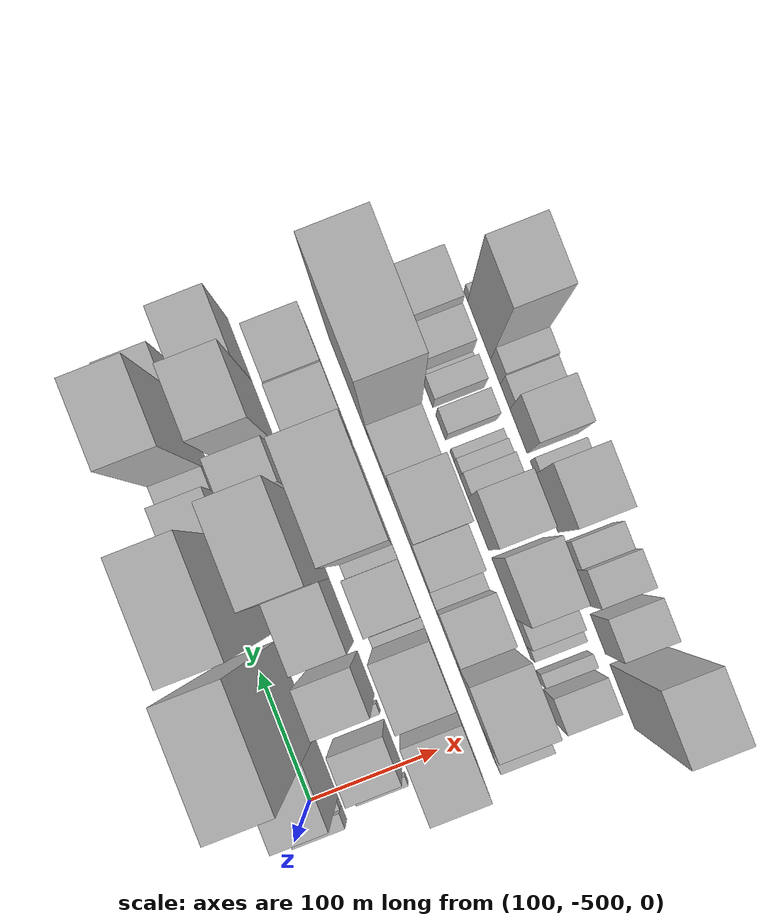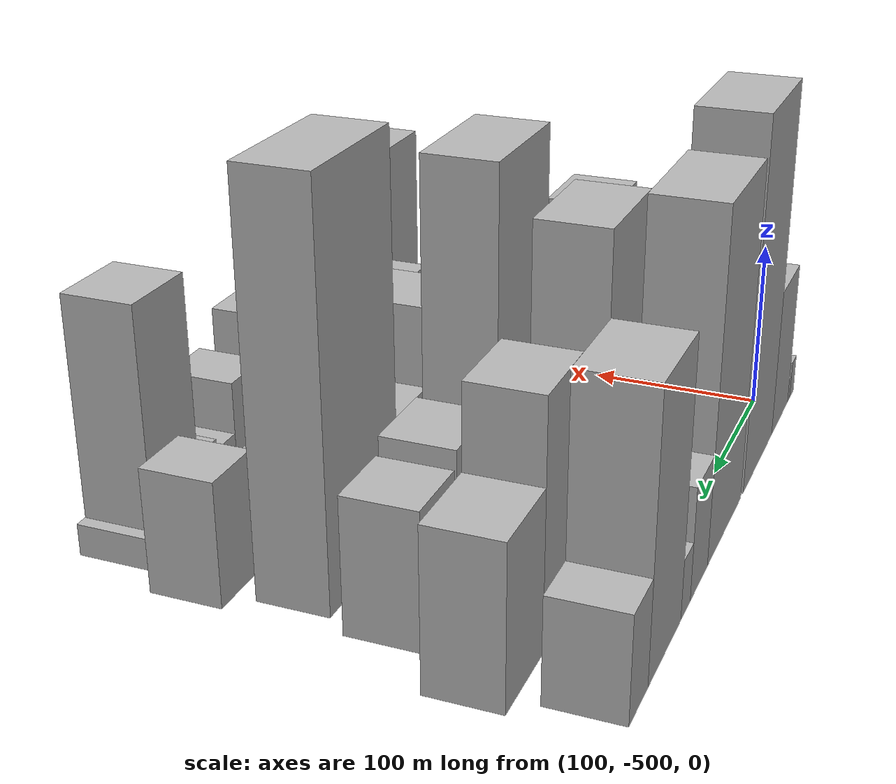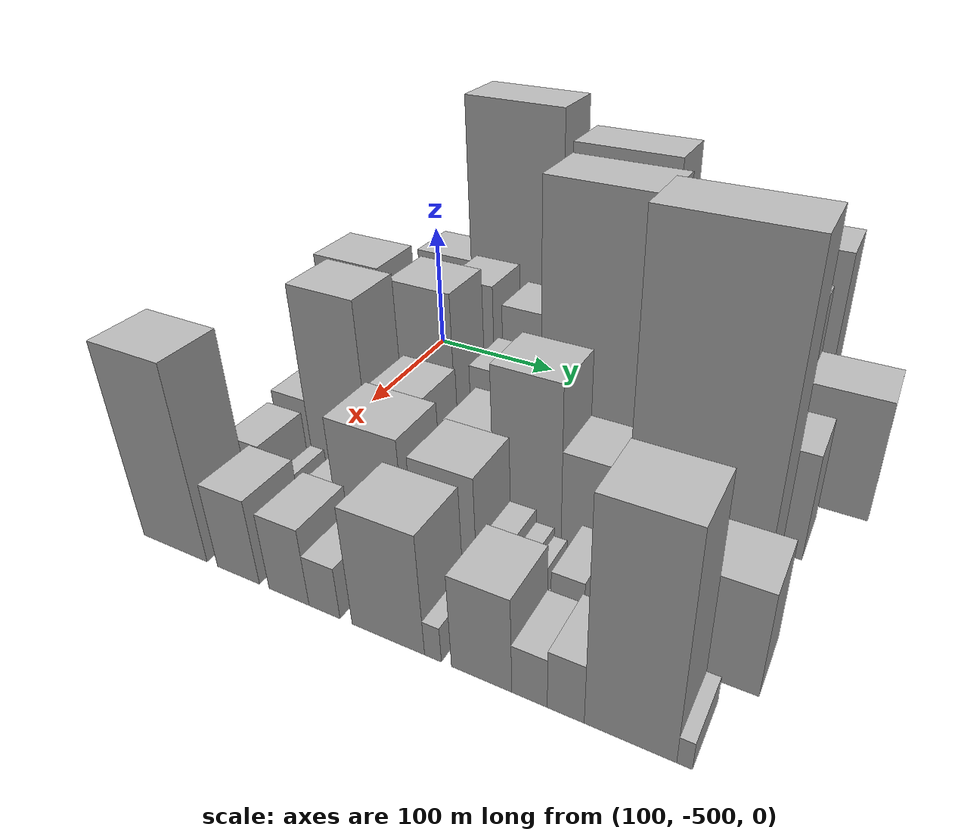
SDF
<sdf version="1.6">
 <world name="default">
  <model name="building_13">
   <static>1</static>
   <pose>100.0000 -517.1850 0 0.000000 0.000000 0.000000</pose>
   <link name="link">
    <pose>0 0 12.00 0 0 0</pose>
    <collision name="collision"><geometry><box><size>40.0000 11.8070 24.0000</size></box></geometry></collision>
    <visual name="visual">
     <cast_shadows>0</cast_shadows>
     <geometry><box><size>40.0000 11.8070 24.0000</size></box></geometry>
     <material>
      <script>
       <uri>model://HANNAS_wall/materials/scripts</uri>
       <uri>model://HANNAS_wall/materials/textures</uri>
       <name>vrc/HANNAS_wall</name>
      </script>
     </material>
    </visual>
   </link>
  </model>
  <model name="building_14">
   <static>1</static>
   <pose>100.0000 -508.1514 0 0.000000 0.000000 0.000000</pose>
   <link name="link">
    <pose>0 0 7.50 0 0 0</pose>
    <collision name="collision"><geometry><box><size>40.0000 6.2602 15.0000</size></box></geometry></collision>
    <visual name="visual">
     <cast_shadows>0</cast_shadows>
     <geometry><box><size>40.0000 6.2602 15.0000</size></box></geometry>
     <material>
      <script>
       <uri>model://HANNAS_wall/materials/scripts</uri>
       <uri>model://HANNAS_wall/materials/textures</uri>
       <name>vrc/HANNAS_wall</name>
      </script>
     </material>
    </visual>
   </link>
  </model>
  <model name="building_15">
   <static>1</static>
   <pose>100.0000 -481.4193 0 0.000000 0.000000 0.000000</pose>
   <link name="link">
    <pose>0 0 45.00 0 0 0</pose>
    <collision name="collision"><geometry><box><size>40.0000 47.2039 90.0000</size></box></geometry></collision>
    <visual name="visual">
     <cast_shadows>0</cast_shadows>
     <geometry><box><size>40.0000 47.2039 90.0000</size></box></geometry>
     <material>
      <script>
       <uri>model://HANNAS_wall/materials/scripts</uri>
       <uri>model://HANNAS_wall/materials/textures</uri>
       <name>vrc/HANNAS_wall</name>
      </script>
     </material>
    </visual>
   </link>
  </model>
  <model name="building_16">
   <static>1</static>
   <pose>100.0000 -420.2112 0 0.000000 0.000000 0.000000</pose>
   <link name="link">
    <pose>0 0 106.50 0 0 0</pose>
    <collision name="collision"><geometry><box><size>40.0000 75.2124 213.0000</size></box></geometry></collision>
    <visual name="visual">
     <cast_shadows>0</cast_shadows>
     <geometry><box><size>40.0000 75.2124 213.0000</size></box></geometry>
     <material>
      <script>
       <uri>model://HANNAS_wall/materials/scripts</uri>
       <uri>model://HANNAS_wall/materials/textures</uri>
       <name>vrc/HANNAS_wall</name>
      </script>
     </material>
    </visual>
   </link>
  </model>
  <model name="building_17">
   <static>1</static>
   <pose>100.0000 -339.1121 0 0.000000 0.000000 0.000000</pose>
   <link name="link">
    <pose>0 0 96.00 0 0 0</pose>
    <collision name="collision"><geometry><box><size>40.0000 74.9859 192.0000</size></box></geometry></collision>
    <visual name="visual">
     <cast_shadows>0</cast_shadows>
     <geometry><box><size>40.0000 74.9859 192.0000</size></box></geometry>
     <material>
      <script>
       <uri>model://HANNAS_wall/materials/scripts</uri>
       <uri>model://HANNAS_wall/materials/textures</uri>
       <name>vrc/HANNAS_wall</name>
      </script>
     </material>
    </visual>
   </link>
  </model>
  <model name="building_18">
   <static>1</static>
   <pose>100.0000 -284.2933 0 0.000000 0.000000 0.000000</pose>
   <link name="link">
    <pose>0 0 31.50 0 0 0</pose>
    <collision name="collision"><geometry><box><size>40.0000 34.6517 63.0000</size></box></geometry></collision>
    <visual name="visual">
     <cast_shadows>0</cast_shadows>
     <geometry><box><size>40.0000 34.6517 63.0000</size></box></geometry>
     <material>
      <script>
       <uri>model://HANNAS_wall/materials/scripts</uri>
       <uri>model://HANNAS_wall/materials/textures</uri>
       <name>vrc/HANNAS_wall</name>
      </script>
     </material>
    </visual>
   </link>
  </model>
  <model name="building_19">
   <static>1</static>
   <pose>100.0000 -258.0641 0 0.000000 0.000000 0.000000</pose>
   <link name="link">
    <pose>0 0 16.50 0 0 0</pose>
    <collision name="collision"><geometry><box><size>40.0000 17.8066 33.0000</size></box></geometry></collision>
    <visual name="visual">
     <cast_shadows>0</cast_shadows>
     <geometry><box><size>40.0000 17.8066 33.0000</size></box></geometry>
     <material>
      <script>
       <uri>model://HANNAS_wall/materials/scripts</uri>
       <uri>model://HANNAS_wall/materials/textures</uri>
       <name>vrc/HANNAS_wall</name>
      </script>
     </material>
    </visual>
   </link>
  </model>
  <model name="building_20">
   <static>1</static>
   <pose>100.0000 -220.5488 0 0.000000 0.000000 0.000000</pose>
   <link name="link">
    <pose>0 0 75.00 0 0 0</pose>
    <collision name="collision"><geometry><box><size>40.0000 57.2241 150.0000</size></box></geometry></collision>
    <visual name="visual">
     <cast_shadows>0</cast_shadows>
     <geometry><box><size>40.0000 57.2241 150.0000</size></box></geometry>
     <material>
      <script>
       <uri>model://HANNAS_wall/materials/scripts</uri>
       <uri>model://HANNAS_wall/materials/textures</uri>
       <name>vrc/HANNAS_wall</name>
      </script>
     </material>
    </visual>
   </link>
  </model>
  <model name="building_21">
   <static>1</static>
   <pose>100.0000 -176.9536 0 0.000000 0.000000 0.000000</pose>
   <link name="link">
    <pose>0 0 28.50 0 0 0</pose>
    <collision name="collision"><geometry><box><size>40.0000 29.9664 57.0000</size></box></geometry></collision>
    <visual name="visual">
     <cast_shadows>0</cast_shadows>
     <geometry><box><size>40.0000 29.9664 57.0000</size></box></geometry>
     <material>
      <script>
       <uri>model://HANNAS_wall/materials/scripts</uri>
       <uri>model://HANNAS_wall/materials/textures</uri>
       <name>vrc/HANNAS_wall</name>
      </script>
     </material>
    </visual>
   </link>
  </model>
  <model name="building_63">
   <static>1</static>
   <pose>152.0000 -509.5908 0 0.000000 0.000000 0.000000</pose>
   <link name="link">
    <pose>0 0 7.50 0 0 0</pose>
    <collision name="collision"><geometry><box><size>40.0000 7.1959 15.0000</size></box></geometry></collision>
    <visual name="visual">
     <cast_shadows>0</cast_shadows>
     <geometry><box><size>40.0000 7.1959 15.0000</size></box></geometry>
     <material>
      <script>
       <uri>model://HANNAS_wall/materials/scripts</uri>
       <uri>model://HANNAS_wall/materials/textures</uri>
       <name>vrc/HANNAS_wall</name>
      </script>
     </material>
    </visual>
   </link>
  </model>
  <model name="building_64">
   <static>1</static>
   <pose>152.0000 -482.2499 0 0.000000 0.000000 0.000000</pose>
   <link name="link">
    <pose>0 0 33.00 0 0 0</pose>
    <collision name="collision"><geometry><box><size>40.0000 35.4860 66.0000</size></box></geometry></collision>
    <visual name="visual">
     <cast_shadows>0</cast_shadows>
     <geometry><box><size>40.0000 35.4860 66.0000</size></box></geometry>
     <material>
      <script>
       <uri>model://HANNAS_wall/materials/scripts</uri>
       <uri>model://HANNAS_wall/materials/textures</uri>
       <name>vrc/HANNAS_wall</name>
      </script>
     </material>
    </visual>
   </link>
  </model>
  <model name="building_65">
   <static>1</static>
   <pose>152.0000 -453.4566 0 0.000000 0.000000 0.000000</pose>
   <link name="link">
    <pose>0 0 9.00 0 0 0</pose>
    <collision name="collision"><geometry><box><size>40.0000 8.1005 18.0000</size></box></geometry></collision>
    <visual name="visual">
     <cast_shadows>0</cast_shadows>
     <geometry><box><size>40.0000 8.1005 18.0000</size></box></geometry>
     <material>
      <script>
       <uri>model://HANNAS_wall/materials/scripts</uri>
       <uri>model://HANNAS_wall/materials/textures</uri>
       <name>vrc/HANNAS_wall</name>
      </script>
     </material>
    </visual>
   </link>
  </model>
  <model name="building_66">
   <static>1</static>
   <pose>152.0000 -428.1462 0 0.000000 0.000000 0.000000</pose>
   <link name="link">
    <pose>0 0 51.00 0 0 0</pose>
    <collision name="collision"><geometry><box><size>40.0000 34.5204 102.0000</size></box></geometry></collision>
    <visual name="visual">
     <cast_shadows>0</cast_shadows>
     <geometry><box><size>40.0000 34.5204 102.0000</size></box></geometry>
     <material>
      <script>
       <uri>model://HANNAS_wall/materials/scripts</uri>
       <uri>model://HANNAS_wall/materials/textures</uri>
       <name>vrc/HANNAS_wall</name>
      </script>
     </material>
    </visual>
   </link>
  </model>
  <model name="building_67">
   <static>1</static>
   <pose>152.0000 -379.0692 0 0.000000 0.000000 0.000000</pose>
   <link name="link">
    <pose>0 0 45.00 0 0 0</pose>
    <collision name="collision"><geometry><box><size>40.0000 49.6336 90.0000</size></box></geometry></collision>
    <visual name="visual">
     <cast_shadows>0</cast_shadows>
     <geometry><box><size>40.0000 49.6336 90.0000</size></box></geometry>
     <material>
      <script>
       <uri>model://HANNAS_wall/materials/scripts</uri>
       <uri>model://HANNAS_wall/materials/textures</uri>
       <name>vrc/HANNAS_wall</name>
      </script>
     </material>
    </visual>
   </link>
  </model>
  <model name="building_68">
   <static>1</static>
   <pose>152.0000 -321.9596 0 0.000000 0.000000 0.000000</pose>
   <link name="link">
    <pose>0 0 88.50 0 0 0</pose>
    <collision name="collision"><geometry><box><size>40.0000 64.5855 177.0000</size></box></geometry></collision>
    <visual name="visual">
     <cast_shadows>0</cast_shadows>
     <geometry><box><size>40.0000 64.5855 177.0000</size></box></geometry>
     <material>
      <script>
       <uri>model://HANNAS_wall/materials/scripts</uri>
       <uri>model://HANNAS_wall/materials/textures</uri>
       <name>vrc/HANNAS_wall</name>
      </script>
     </material>
    </visual>
   </link>
  </model>
  <model name="building_69">
   <static>1</static>
   <pose>152.0000 -271.2479 0 0.000000 0.000000 0.000000</pose>
   <link name="link">
    <pose>0 0 49.50 0 0 0</pose>
    <collision name="collision"><geometry><box><size>40.0000 30.8381 99.0000</size></box></geometry></collision>
    <visual name="visual">
     <cast_shadows>0</cast_shadows>
     <geometry><box><size>40.0000 30.8381 99.0000</size></box></geometry>
     <material>
      <script>
       <uri>model://HANNAS_wall/materials/scripts</uri>
       <uri>model://HANNAS_wall/materials/textures</uri>
       <name>vrc/HANNAS_wall</name>
      </script>
     </material>
    </visual>
   </link>
  </model>
  <model name="building_70">
   <static>1</static>
   <pose>152.0000 -224.0461 0 0.000000 0.000000 0.000000</pose>
   <link name="link">
    <pose>0 0 66.00 0 0 0</pose>
    <collision name="collision"><geometry><box><size>40.0000 49.5654 132.0000</size></box></geometry></collision>
    <visual name="visual">
     <cast_shadows>0</cast_shadows>
     <geometry><box><size>40.0000 49.5654 132.0000</size></box></geometry>
     <material>
      <script>
       <uri>model://HANNAS_wall/materials/scripts</uri>
       <uri>model://HANNAS_wall/materials/textures</uri>
       <name>vrc/HANNAS_wall</name>
      </script>
     </material>
    </visual>
   </link>
  </model>
  <model name="building_71">
   <static>1</static>
   <pose>152.0000 -174.6431 0 0.000000 0.000000 0.000000</pose>
   <link name="link">
    <pose>0 0 43.50 0 0 0</pose>
    <collision name="collision"><geometry><box><size>40.0000 49.2407 87.0000</size></box></geometry></collision>
    <visual name="visual">
     <cast_shadows>0</cast_shadows>
     <geometry><box><size>40.0000 49.2407 87.0000</size></box></geometry>
     <material>
      <script>
       <uri>model://HANNAS_wall/materials/scripts</uri>
       <uri>model://HANNAS_wall/materials/textures</uri>
       <name>vrc/HANNAS_wall</name>
      </script>
     </material>
    </visual>
   </link>
  </model>
  <model name="building_113">
   <static>1</static>
   <pose>204.0000 -490.4051 0 0.000000 0.000000 0.000000</pose>
   <link name="link">
    <pose>0 0 63.00 0 0 0</pose>
    <collision name="collision"><geometry><box><size>40.0000 50.2947 126.0000</size></box></geometry></collision>
    <visual name="visual">
     <cast_shadows>0</cast_shadows>
     <geometry><box><size>40.0000 50.2947 126.0000</size></box></geometry>
     <material>
      <script>
       <uri>model://HANNAS_wall/materials/scripts</uri>
       <uri>model://HANNAS_wall/materials/textures</uri>
       <name>vrc/HANNAS_wall</name>
      </script>
     </material>
    </visual>
   </link>
  </model>
  <model name="building_114">
   <static>1</static>
   <pose>204.0000 -461.5986 0 0.000000 0.000000 0.000000</pose>
   <link name="link">
    <pose>0 0 7.50 0 0 0</pose>
    <collision name="collision"><geometry><box><size>40.0000 7.3183 15.0000</size></box></geometry></collision>
    <visual name="visual">
     <cast_shadows>0</cast_shadows>
     <geometry><box><size>40.0000 7.3183 15.0000</size></box></geometry>
     <material>
      <script>
       <uri>model://HANNAS_wall/materials/scripts</uri>
       <uri>model://HANNAS_wall/materials/textures</uri>
       <name>vrc/HANNAS_wall</name>
      </script>
     </material>
    </visual>
   </link>
  </model>
  <model name="building_115">
   <static>1</static>
   <pose>204.0000 -434.9553 0 0.000000 0.000000 0.000000</pose>
   <link name="link">
    <pose>0 0 60.00 0 0 0</pose>
    <collision name="collision"><geometry><box><size>40.0000 45.9682 120.0000</size></box></geometry></collision>
    <visual name="visual">
     <cast_shadows>0</cast_shadows>
     <geometry><box><size>40.0000 45.9682 120.0000</size></box></geometry>
     <material>
      <script>
       <uri>model://HANNAS_wall/materials/scripts</uri>
       <uri>model://HANNAS_wall/materials/textures</uri>
       <name>vrc/HANNAS_wall</name>
      </script>
     </material>
    </visual>
   </link>
  </model>
  <model name="building_116">
   <static>1</static>
   <pose>204.0000 -407.9689 0 0.000000 0.000000 0.000000</pose>
   <link name="link">
    <pose>0 0 9.00 0 0 0</pose>
    <collision name="collision"><geometry><box><size>40.0000 8.0047 18.0000</size></box></geometry></collision>
    <visual name="visual">
     <cast_shadows>0</cast_shadows>
     <geometry><box><size>40.0000 8.0047 18.0000</size></box></geometry>
     <material>
      <script>
       <uri>model://HANNAS_wall/materials/scripts</uri>
       <uri>model://HANNAS_wall/materials/textures</uri>
       <name>vrc/HANNAS_wall</name>
      </script>
     </material>
    </visual>
   </link>
  </model>
  <model name="building_117">
   <static>1</static>
   <pose>204.0000 -379.5652 0 0.000000 0.000000 0.000000</pose>
   <link name="link">
    <pose>0 0 36.00 0 0 0</pose>
    <collision name="collision"><geometry><box><size>40.0000 40.8026 72.0000</size></box></geometry></collision>
    <visual name="visual">
     <cast_shadows>0</cast_shadows>
     <geometry><box><size>40.0000 40.8026 72.0000</size></box></geometry>
     <material>
      <script>
       <uri>model://HANNAS_wall/materials/scripts</uri>
       <uri>model://HANNAS_wall/materials/textures</uri>
       <name>vrc/HANNAS_wall</name>
      </script>
     </material>
    </visual>
   </link>
  </model>
  <model name="building_118">
   <static>1</static>
   <pose>204.0000 -353.7337 0 0.000000 0.000000 0.000000</pose>
   <link name="link">
    <pose>0 0 12.00 0 0 0</pose>
    <collision name="collision"><geometry><box><size>40.0000 10.8604 24.0000</size></box></geometry></collision>
    <visual name="visual">
     <cast_shadows>0</cast_shadows>
     <geometry><box><size>40.0000 10.8604 24.0000</size></box></geometry>
     <material>
      <script>
       <uri>model://HANNAS_wall/materials/scripts</uri>
       <uri>model://HANNAS_wall/materials/textures</uri>
       <name>vrc/HANNAS_wall</name>
      </script>
     </material>
    </visual>
   </link>
  </model>
  <model name="building_119">
   <static>1</static>
   <pose>204.0000 -312.4200 0 0.000000 0.000000 0.000000</pose>
   <link name="link">
    <pose>0 0 103.50 0 0 0</pose>
    <collision name="collision"><geometry><box><size>40.0000 71.7670 207.0000</size></box></geometry></collision>
    <visual name="visual">
     <cast_shadows>0</cast_shadows>
     <geometry><box><size>40.0000 71.7670 207.0000</size></box></geometry>
     <material>
      <script>
       <uri>model://HANNAS_wall/materials/scripts</uri>
       <uri>model://HANNAS_wall/materials/textures</uri>
       <name>vrc/HANNAS_wall</name>
      </script>
     </material>
    </visual>
   </link>
  </model>
  <model name="building_120">
   <static>1</static>
   <pose>204.0000 -245.8592 0 0.000000 0.000000 0.000000</pose>
   <link name="link">
    <pose>0 0 42.00 0 0 0</pose>
    <collision name="collision"><geometry><box><size>40.0000 45.3545 84.0000</size></box></geometry></collision>
    <visual name="visual">
     <cast_shadows>0</cast_shadows>
     <geometry><box><size>40.0000 45.3545 84.0000</size></box></geometry>
     <material>
      <script>
       <uri>model://HANNAS_wall/materials/scripts</uri>
       <uri>model://HANNAS_wall/materials/textures</uri>
       <name>vrc/HANNAS_wall</name>
      </script>
     </material>
    </visual>
   </link>
  </model>
  <model name="building_121">
   <static>1</static>
   <pose>204.0000 -199.6373 0 0.000000 0.000000 0.000000</pose>
   <link name="link">
    <pose>0 0 37.50 0 0 0</pose>
    <collision name="collision"><geometry><box><size>40.0000 41.0892 75.0000</size></box></geometry></collision>
    <visual name="visual">
     <cast_shadows>0</cast_shadows>
     <geometry><box><size>40.0000 41.0892 75.0000</size></box></geometry>
     <material>
      <script>
       <uri>model://HANNAS_wall/materials/scripts</uri>
       <uri>model://HANNAS_wall/materials/textures</uri>
       <name>vrc/HANNAS_wall</name>
      </script>
     </material>
    </visual>
   </link>
  </model>
  <model name="building_159">
   <static>1</static>
   <pose>256.0000 -507.6726 0 0.000000 0.000000 0.000000</pose>
   <link name="link">
    <pose>0 0 24.00 0 0 0</pose>
    <collision name="collision"><geometry><box><size>40.0000 27.3501 48.0000</size></box></geometry></collision>
    <visual name="visual">
     <cast_shadows>0</cast_shadows>
     <geometry><box><size>40.0000 27.3501 48.0000</size></box></geometry>
     <material>
      <script>
       <uri>model://HANNAS_wall/materials/scripts</uri>
       <uri>model://HANNAS_wall/materials/textures</uri>
       <name>vrc/HANNAS_wall</name>
      </script>
     </material>
    </visual>
   </link>
  </model>
  <model name="building_160">
   <static>1</static>
   <pose>256.0000 -469.5822 0 0.000000 0.000000 0.000000</pose>
   <link name="link">
    <pose>0 0 66.00 0 0 0</pose>
    <collision name="collision"><geometry><box><size>40.0000 48.8307 132.0000</size></box></geometry></collision>
    <visual name="visual">
     <cast_shadows>0</cast_shadows>
     <geometry><box><size>40.0000 48.8307 132.0000</size></box></geometry>
     <material>
      <script>
       <uri>model://HANNAS_wall/materials/scripts</uri>
       <uri>model://HANNAS_wall/materials/textures</uri>
       <name>vrc/HANNAS_wall</name>
      </script>
     </material>
    </visual>
   </link>
  </model>
  <model name="building_161">
   <static>1</static>
   <pose>256.0000 -422.0127 0 0.000000 0.000000 0.000000</pose>
   <link name="link">
    <pose>0 0 37.50 0 0 0</pose>
    <collision name="collision"><geometry><box><size>40.0000 38.3083 75.0000</size></box></geometry></collision>
    <visual name="visual">
     <cast_shadows>0</cast_shadows>
     <geometry><box><size>40.0000 38.3083 75.0000</size></box></geometry>
     <material>
      <script>
       <uri>model://HANNAS_wall/materials/scripts</uri>
       <uri>model://HANNAS_wall/materials/textures</uri>
       <name>vrc/HANNAS_wall</name>
      </script>
     </material>
    </visual>
   </link>
  </model>
  <model name="building_162">
   <static>1</static>
   <pose>256.0000 -395.3564 0 0.000000 0.000000 0.000000</pose>
   <link name="link">
    <pose>0 0 15.00 0 0 0</pose>
    <collision name="collision"><geometry><box><size>40.0000 15.0042 30.0000</size></box></geometry></collision>
    <visual name="visual">
     <cast_shadows>0</cast_shadows>
     <geometry><box><size>40.0000 15.0042 30.0000</size></box></geometry>
     <material>
      <script>
       <uri>model://HANNAS_wall/materials/scripts</uri>
       <uri>model://HANNAS_wall/materials/textures</uri>
       <name>vrc/HANNAS_wall</name>
      </script>
     </material>
    </visual>
   </link>
  </model>
  <model name="building_163">
   <static>1</static>
   <pose>256.0000 -371.2422 0 0.000000 0.000000 0.000000</pose>
   <link name="link">
    <pose>0 0 33.00 0 0 0</pose>
    <collision name="collision"><geometry><box><size>40.0000 33.2243 66.0000</size></box></geometry></collision>
    <visual name="visual">
     <cast_shadows>0</cast_shadows>
     <geometry><box><size>40.0000 33.2243 66.0000</size></box></geometry>
     <material>
      <script>
       <uri>model://HANNAS_wall/materials/scripts</uri>
       <uri>model://HANNAS_wall/materials/textures</uri>
       <name>vrc/HANNAS_wall</name>
      </script>
     </material>
    </visual>
   </link>
  </model>
  <model name="building_164">
   <static>1</static>
   <pose>256.0000 -332.0617 0 0.000000 0.000000 0.000000</pose>
   <link name="link">
    <pose>0 0 57.00 0 0 0</pose>
    <collision name="collision"><geometry><box><size>40.0000 45.1366 114.0000</size></box></geometry></collision>
    <visual name="visual">
     <cast_shadows>0</cast_shadows>
     <geometry><box><size>40.0000 45.1366 114.0000</size></box></geometry>
     <material>
      <script>
       <uri>model://HANNAS_wall/materials/scripts</uri>
       <uri>model://HANNAS_wall/materials/textures</uri>
       <name>vrc/HANNAS_wall</name>
      </script>
     </material>
    </visual>
   </link>
  </model>
  <model name="building_165">
   <static>1</static>
   <pose>256.0000 -289.6805 0 0.000000 0.000000 0.000000</pose>
   <link name="link">
    <pose>0 0 34.50 0 0 0</pose>
    <collision name="collision"><geometry><box><size>40.0000 39.6256 69.0000</size></box></geometry></collision>
    <visual name="visual">
     <cast_shadows>0</cast_shadows>
     <geometry><box><size>40.0000 39.6256 69.0000</size></box></geometry>
     <material>
      <script>
       <uri>model://HANNAS_wall/materials/scripts</uri>
       <uri>model://HANNAS_wall/materials/textures</uri>
       <name>vrc/HANNAS_wall</name>
      </script>
     </material>
    </visual>
   </link>
  </model>
  <model name="building_166">
   <static>1</static>
   <pose>256.0000 -229.9769 0 0.000000 0.000000 0.000000</pose>
   <link name="link">
    <pose>0 0 111.00 0 0 0</pose>
    <collision name="collision"><geometry><box><size>40.0000 79.7816 222.0000</size></box></geometry></collision>
    <visual name="visual">
     <cast_shadows>0</cast_shadows>
     <geometry><box><size>40.0000 79.7816 222.0000</size></box></geometry>
     <material>
      <script>
       <uri>model://HANNAS_wall/materials/scripts</uri>
       <uri>model://HANNAS_wall/materials/textures</uri>
       <name>vrc/HANNAS_wall</name>
      </script>
     </material>
    </visual>
   </link>
  </model>
  <model name="building_208">
   <static>1</static>
   <pose>308.0000 -500.0056 0 0.000000 0.000000 0.000000</pose>
   <link name="link">
    <pose>0 0 24.00 0 0 0</pose>
    <collision name="collision"><geometry><box><size>40.0000 26.8283 48.0000</size></box></geometry></collision>
    <visual name="visual">
     <cast_shadows>0</cast_shadows>
     <geometry><box><size>40.0000 26.8283 48.0000</size></box></geometry>
     <material>
      <script>
       <uri>model://HANNAS_wall/materials/scripts</uri>
       <uri>model://HANNAS_wall/materials/textures</uri>
       <name>vrc/HANNAS_wall</name>
      </script>
     </material>
    </visual>
   </link>
  </model>
  <model name="building_209">
   <static>1</static>
   <pose>308.0000 -477.2563 0 0.000000 0.000000 0.000000</pose>
   <link name="link">
    <pose>0 0 12.00 0 0 0</pose>
    <collision name="collision"><geometry><box><size>40.0000 10.6703 24.0000</size></box></geometry></collision>
    <visual name="visual">
     <cast_shadows>0</cast_shadows>
     <geometry><box><size>40.0000 10.6703 24.0000</size></box></geometry>
     <material>
      <script>
       <uri>model://HANNAS_wall/materials/scripts</uri>
       <uri>model://HANNAS_wall/materials/textures</uri>
       <name>vrc/HANNAS_wall</name>
      </script>
     </material>
    </visual>
   </link>
  </model>
  <model name="building_210">
   <static>1</static>
   <pose>308.0000 -457.9179 0 0.000000 0.000000 0.000000</pose>
   <link name="link">
    <pose>0 0 10.50 0 0 0</pose>
    <collision name="collision"><geometry><box><size>40.0000 10.0064 21.0000</size></box></geometry></collision>
    <visual name="visual">
     <cast_shadows>0</cast_shadows>
     <geometry><box><size>40.0000 10.0064 21.0000</size></box></geometry>
     <material>
      <script>
       <uri>model://HANNAS_wall/materials/scripts</uri>
       <uri>model://HANNAS_wall/materials/textures</uri>
       <name>vrc/HANNAS_wall</name>
      </script>
     </material>
    </visual>
   </link>
  </model>
  <model name="building_211">
   <static>1</static>
   <pose>308.0000 -442.2854 0 0.000000 0.000000 0.000000</pose>
   <link name="link">
    <pose>0 0 18.00 0 0 0</pose>
    <collision name="collision"><geometry><box><size>40.0000 21.2585 36.0000</size></box></geometry></collision>
    <visual name="visual">
     <cast_shadows>0</cast_shadows>
     <geometry><box><size>40.0000 21.2585 36.0000</size></box></geometry>
     <material>
      <script>
       <uri>model://HANNAS_wall/materials/scripts</uri>
       <uri>model://HANNAS_wall/materials/textures</uri>
       <name>vrc/HANNAS_wall</name>
      </script>
     </material>
    </visual>
   </link>
  </model>
  <model name="building_212">
   <static>1</static>
   <pose>308.0000 -407.5856 0 0.000000 0.000000 0.000000</pose>
   <link name="link">
    <pose>0 0 43.50 0 0 0</pose>
    <collision name="collision"><geometry><box><size>40.0000 48.1411 87.0000</size></box></geometry></collision>
    <visual name="visual">
     <cast_shadows>0</cast_shadows>
     <geometry><box><size>40.0000 48.1411 87.0000</size></box></geometry>
     <material>
      <script>
       <uri>model://HANNAS_wall/materials/scripts</uri>
       <uri>model://HANNAS_wall/materials/textures</uri>
       <name>vrc/HANNAS_wall</name>
      </script>
     </material>
    </visual>
   </link>
  </model>
  <model name="building_213">
   <static>1</static>
   <pose>308.0000 -357.0878 0 0.000000 0.000000 0.000000</pose>
   <link name="link">
    <pose>0 0 39.00 0 0 0</pose>
    <collision name="collision"><geometry><box><size>40.0000 40.8545 78.0000</size></box></geometry></collision>
    <visual name="visual">
     <cast_shadows>0</cast_shadows>
     <geometry><box><size>40.0000 40.8545 78.0000</size></box></geometry>
     <material>
      <script>
       <uri>model://HANNAS_wall/materials/scripts</uri>
       <uri>model://HANNAS_wall/materials/textures</uri>
       <name>vrc/HANNAS_wall</name>
      </script>
     </material>
    </visual>
   </link>
  </model>
  <model name="building_214">
   <static>1</static>
   <pose>308.0000 -328.2828 0 0.000000 0.000000 0.000000</pose>
   <link name="link">
    <pose>0 0 16.50 0 0 0</pose>
    <collision name="collision"><geometry><box><size>40.0000 16.7555 33.0000</size></box></geometry></collision>
    <visual name="visual">
     <cast_shadows>0</cast_shadows>
     <geometry><box><size>40.0000 16.7555 33.0000</size></box></geometry>
     <material>
      <script>
       <uri>model://HANNAS_wall/materials/scripts</uri>
       <uri>model://HANNAS_wall/materials/textures</uri>
       <name>vrc/HANNAS_wall</name>
      </script>
     </material>
    </visual>
   </link>
  </model>
  <model name="building_215">
   <static>1</static>
   <pose>308.0000 -314.1621 0 0.000000 0.000000 0.000000</pose>
   <link name="link">
    <pose>0 0 12.00 0 0 0</pose>
    <collision name="collision"><geometry><box><size>40.0000 11.4859 24.0000</size></box></geometry></collision>
    <visual name="visual">
     <cast_shadows>0</cast_shadows>
     <geometry><box><size>40.0000 11.4859 24.0000</size></box></geometry>
     <material>
      <script>
       <uri>model://HANNAS_wall/materials/scripts</uri>
       <uri>model://HANNAS_wall/materials/textures</uri>
       <name>vrc/HANNAS_wall</name>
      </script>
     </material>
    </visual>
   </link>
  </model>
  <model name="building_216">
   <static>1</static>
   <pose>308.0000 -304.3136 0 0.000000 0.000000 0.000000</pose>
   <link name="link">
    <pose>0 0 9.00 0 0 0</pose>
    <collision name="collision"><geometry><box><size>40.0000 8.2110 18.0000</size></box></geometry></collision>
    <visual name="visual">
     <cast_shadows>0</cast_shadows>
     <geometry><box><size>40.0000 8.2110 18.0000</size></box></geometry>
     <material>
      <script>
       <uri>model://HANNAS_wall/materials/scripts</uri>
       <uri>model://HANNAS_wall/materials/textures</uri>
       <name>vrc/HANNAS_wall</name>
      </script>
     </material>
    </visual>
   </link>
  </model>
  <model name="building_217">
   <static>1</static>
   <pose>308.0000 -281.4961 0 0.000000 0.000000 0.000000</pose>
   <link name="link">
    <pose>0 0 16.50 0 0 0</pose>
    <collision name="collision"><geometry><box><size>40.0000 19.4240 33.0000</size></box></geometry></collision>
    <visual name="visual">
     <cast_shadows>0</cast_shadows>
     <geometry><box><size>40.0000 19.4240 33.0000</size></box></geometry>
     <material>
      <script>
       <uri>model://HANNAS_wall/materials/scripts</uri>
       <uri>model://HANNAS_wall/materials/textures</uri>
       <name>vrc/HANNAS_wall</name>
      </script>
     </material>
    </visual>
   </link>
  </model>
  <model name="building_218">
   <static>1</static>
   <pose>308.0000 -256.7072 0 0.000000 0.000000 0.000000</pose>
   <link name="link">
    <pose>0 0 18.00 0 0 0</pose>
    <collision name="collision"><geometry><box><size>40.0000 18.1538 36.0000</size></box></geometry></collision>
    <visual name="visual">
     <cast_shadows>0</cast_shadows>
     <geometry><box><size>40.0000 18.1538 36.0000</size></box></geometry>
     <material>
      <script>
       <uri>model://HANNAS_wall/materials/scripts</uri>
       <uri>model://HANNAS_wall/materials/textures</uri>
       <name>vrc/HANNAS_wall</name>
      </script>
     </material>
    </visual>
   </link>
  </model>
  <model name="building_219">
   <static>1</static>
   <pose>308.0000 -244.2682 0 0.000000 0.000000 0.000000</pose>
   <link name="link">
    <pose>0 0 7.50 0 0 0</pose>
    <collision name="collision"><geometry><box><size>40.0000 6.7242 15.0000</size></box></geometry></collision>
    <visual name="visual">
     <cast_shadows>0</cast_shadows>
     <geometry><box><size>40.0000 6.7242 15.0000</size></box></geometry>
     <material>
      <script>
       <uri>model://HANNAS_wall/materials/scripts</uri>
       <uri>model://HANNAS_wall/materials/textures</uri>
       <name>vrc/HANNAS_wall</name>
      </script>
     </material>
    </visual>
   </link>
  </model>
  <model name="building_220">
   <static>1</static>
   <pose>308.0000 -227.5807 0 0.000000 0.000000 0.000000</pose>
   <link name="link">
    <pose>0 0 25.50 0 0 0</pose>
    <collision name="collision"><geometry><box><size>40.0000 26.6508 51.0000</size></box></geometry></collision>
    <visual name="visual">
     <cast_shadows>0</cast_shadows>
     <geometry><box><size>40.0000 26.6508 51.0000</size></box></geometry>
     <material>
      <script>
       <uri>model://HANNAS_wall/materials/scripts</uri>
       <uri>model://HANNAS_wall/materials/textures</uri>
       <name>vrc/HANNAS_wall</name>
      </script>
     </material>
    </visual>
   </link>
  </model>
  <model name="building_221">
   <static>1</static>
   <pose>308.0000 -196.0851 0 0.000000 0.000000 0.000000</pose>
   <link name="link">
    <pose>0 0 34.50 0 0 0</pose>
    <collision name="collision"><geometry><box><size>40.0000 36.3402 69.0000</size></box></geometry></collision>
    <visual name="visual">
     <cast_shadows>0</cast_shadows>
     <geometry><box><size>40.0000 36.3402 69.0000</size></box></geometry>
     <material>
      <script>
       <uri>model://HANNAS_wall/materials/scripts</uri>
       <uri>model://HANNAS_wall/materials/textures</uri>
       <name>vrc/HANNAS_wall</name>
      </script>
     </material>
    </visual>
   </link>
  </model>
  <model name="building_257">
   <static>1</static>
   <pose>360.0000 -512.6156 0 0.000000 0.000000 0.000000</pose>
   <link name="link">
    <pose>0 0 67.50 0 0 0</pose>
    <collision name="collision"><geometry><box><size>40.0000 50.4500 135.0000</size></box></geometry></collision>
    <visual name="visual">
     <cast_shadows>0</cast_shadows>
     <geometry><box><size>40.0000 50.4500 135.0000</size></box></geometry>
     <material>
      <script>
       <uri>model://HANNAS_wall/materials/scripts</uri>
       <uri>model://HANNAS_wall/materials/textures</uri>
       <name>vrc/HANNAS_wall</name>
      </script>
     </material>
    </visual>
   </link>
  </model>
  <model name="building_258">
   <static>1</static>
   <pose>360.0000 -463.7407 0 0.000000 0.000000 0.000000</pose>
   <link name="link">
    <pose>0 0 30.00 0 0 0</pose>
    <collision name="collision"><geometry><box><size>40.0000 31.2998 60.0000</size></box></geometry></collision>
    <visual name="visual">
     <cast_shadows>0</cast_shadows>
     <geometry><box><size>40.0000 31.2998 60.0000</size></box></geometry>
     <material>
      <script>
       <uri>model://HANNAS_wall/materials/scripts</uri>
       <uri>model://HANNAS_wall/materials/textures</uri>
       <name>vrc/HANNAS_wall</name>
      </script>
     </material>
    </visual>
   </link>
  </model>
  <model name="building_259">
   <static>1</static>
   <pose>360.0000 -427.0055 0 0.000000 0.000000 0.000000</pose>
   <link name="link">
    <pose>0 0 27.00 0 0 0</pose>
    <collision name="collision"><geometry><box><size>40.0000 28.1706 54.0000</size></box></geometry></collision>
    <visual name="visual">
     <cast_shadows>0</cast_shadows>
     <geometry><box><size>40.0000 28.1706 54.0000</size></box></geometry>
     <material>
      <script>
       <uri>model://HANNAS_wall/materials/scripts</uri>
       <uri>model://HANNAS_wall/materials/textures</uri>
       <name>vrc/HANNAS_wall</name>
      </script>
     </material>
    </visual>
   </link>
  </model>
  <model name="building_260">
   <static>1</static>
   <pose>360.0000 -402.4580 0 0.000000 0.000000 0.000000</pose>
   <link name="link">
    <pose>0 0 18.00 0 0 0</pose>
    <collision name="collision"><geometry><box><size>40.0000 20.9244 36.0000</size></box></geometry></collision>
    <visual name="visual">
     <cast_shadows>0</cast_shadows>
     <geometry><box><size>40.0000 20.9244 36.0000</size></box></geometry>
     <material>
      <script>
       <uri>model://HANNAS_wall/materials/scripts</uri>
       <uri>model://HANNAS_wall/materials/textures</uri>
       <name>vrc/HANNAS_wall</name>
      </script>
     </material>
    </visual>
   </link>
  </model>
  <model name="building_261">
   <static>1</static>
   <pose>360.0000 -361.0859 0 0.000000 0.000000 0.000000</pose>
   <link name="link">
    <pose>0 0 40.50 0 0 0</pose>
    <collision name="collision"><geometry><box><size>40.0000 45.8199 81.0000</size></box></geometry></collision>
    <visual name="visual">
     <cast_shadows>0</cast_shadows>
     <geometry><box><size>40.0000 45.8199 81.0000</size></box></geometry>
     <material>
      <script>
       <uri>model://HANNAS_wall/materials/scripts</uri>
       <uri>model://HANNAS_wall/materials/textures</uri>
       <name>vrc/HANNAS_wall</name>
      </script>
     </material>
    </visual>
   </link>
  </model>
  <model name="building_262">
   <static>1</static>
   <pose>360.0000 -333.1180 0 0.000000 0.000000 0.000000</pose>
   <link name="link">
    <pose>0 0 12.00 0 0 0</pose>
    <collision name="collision"><geometry><box><size>40.0000 10.1159 24.0000</size></box></geometry></collision>
    <visual name="visual">
     <cast_shadows>0</cast_shadows>
     <geometry><box><size>40.0000 10.1159 24.0000</size></box></geometry>
     <material>
      <script>
       <uri>model://HANNAS_wall/materials/scripts</uri>
       <uri>model://HANNAS_wall/materials/textures</uri>
       <name>vrc/HANNAS_wall</name>
      </script>
     </material>
    </visual>
   </link>
  </model>
  <model name="building_263">
   <static>1</static>
   <pose>360.0000 -304.7442 0 0.000000 0.000000 0.000000</pose>
   <link name="link">
    <pose>0 0 31.50 0 0 0</pose>
    <collision name="collision"><geometry><box><size>40.0000 34.6317 63.0000</size></box></geometry></collision>
    <visual name="visual">
     <cast_shadows>0</cast_shadows>
     <geometry><box><size>40.0000 34.6317 63.0000</size></box></geometry>
     <material>
      <script>
       <uri>model://HANNAS_wall/materials/scripts</uri>
       <uri>model://HANNAS_wall/materials/textures</uri>
       <name>vrc/HANNAS_wall</name>
      </script>
     </material>
    </visual>
   </link>
  </model>
  <model name="building_264">
   <static>1</static>
   <pose>360.0000 -277.7403 0 0.000000 0.000000 0.000000</pose>
   <link name="link">
    <pose>0 0 16.50 0 0 0</pose>
    <collision name="collision"><geometry><box><size>40.0000 19.3760 33.0000</size></box></geometry></collision>
    <visual name="visual">
     <cast_shadows>0</cast_shadows>
     <geometry><box><size>40.0000 19.3760 33.0000</size></box></geometry>
     <material>
      <script>
       <uri>model://HANNAS_wall/materials/scripts</uri>
       <uri>model://HANNAS_wall/materials/textures</uri>
       <name>vrc/HANNAS_wall</name>
      </script>
     </material>
    </visual>
   </link>
  </model>
  <model name="building_265">
   <static>1</static>
   <pose>360.0000 -258.3020 0 0.000000 0.000000 0.000000</pose>
   <link name="link">
    <pose>0 0 19.50 0 0 0</pose>
    <collision name="collision"><geometry><box><size>40.0000 19.5004 39.0000</size></box></geometry></collision>
    <visual name="visual">
     <cast_shadows>0</cast_shadows>
     <geometry><box><size>40.0000 19.5004 39.0000</size></box></geometry>
     <material>
      <script>
       <uri>model://HANNAS_wall/materials/scripts</uri>
       <uri>model://HANNAS_wall/materials/textures</uri>
       <name>vrc/HANNAS_wall</name>
      </script>
     </material>
    </visual>
   </link>
  </model>
  <model name="building_266">
   <static>1</static>
   <pose>360.0000 -225.5821 0 0.000000 0.000000 0.000000</pose>
   <link name="link">
    <pose>0 0 70.50 0 0 0</pose>
    <collision name="collision"><geometry><box><size>40.0000 45.9395 141.0000</size></box></geometry></collision>
    <visual name="visual">
     <cast_shadows>0</cast_shadows>
     <geometry><box><size>40.0000 45.9395 141.0000</size></box></geometry>
     <material>
      <script>
       <uri>model://HANNAS_wall/materials/scripts</uri>
       <uri>model://HANNAS_wall/materials/textures</uri>
       <name>vrc/HANNAS_wall</name>
      </script>
     </material>
    </visual>
   </link>
  </model>
  <model name="building_267">
   <static>1</static>
   <pose>360.0000 -198.8654 0 0.000000 0.000000 0.000000</pose>
   <link name="link">
    <pose>0 0 9.00 0 0 0</pose>
    <collision name="collision"><geometry><box><size>40.0000 7.4939 18.0000</size></box></geometry></collision>
    <visual name="visual">
     <cast_shadows>0</cast_shadows>
     <geometry><box><size>40.0000 7.4939 18.0000</size></box></geometry>
     <material>
      <script>
       <uri>model://HANNAS_wall/materials/scripts</uri>
       <uri>model://HANNAS_wall/materials/textures</uri>
       <name>vrc/HANNAS_wall</name>
      </script>
     </material>
    </visual>
   </link>
  </model>
 </world>
</sdf>
